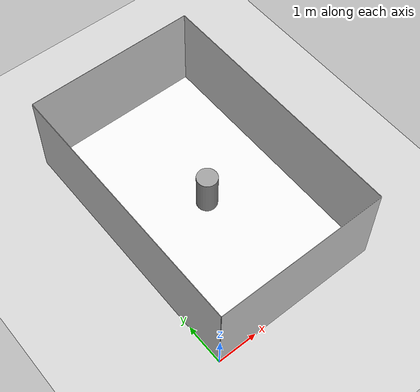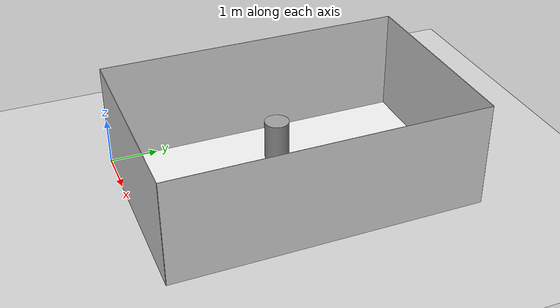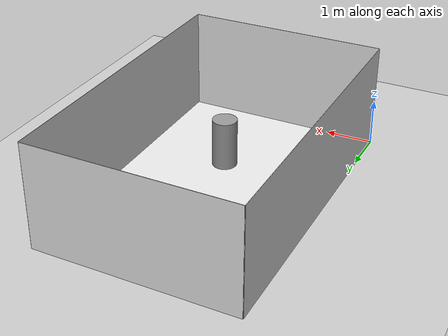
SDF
<sdf version="1.6">
 <world name="default">
  <include><uri>model://ground_plane</uri></include>
  <include><uri>model://sun</uri></include>
  <include><uri>model://basement_tank</uri><static>true</static></include>
  <include><uri>model://cylinder_target</uri><pose>2.1 3.0 1.0 0 0 0</pose><static>true</static></include>
 </world>
</sdf>

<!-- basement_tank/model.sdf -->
<sdf version='1.6'>
  <model name='basement_tank_model'>
    <link name='basement_tank'>
      <inertial>
        <mass>1</mass>
      </inertial>

      <collision name='bottom'>
        <laser_retro>50</laser_retro>
        <pose frame=''>2.135 3.27 0.005 0 -0 0</pose>
        <geometry>
          <box>
            <size>4.27 6.54 0.01</size>
          </box>
        </geometry>
      </collision>
      <visual name='visual1'>
        <pose frame=''>2.135 3.27 0.005 0 -0 0</pose>
        <geometry>
          <box>
            <size>4.27 6.54 0.01</size>
          </box>
        </geometry>
        <material>
          <script>
            <uri>file://media/materials/scripts/gazebo.material</uri>
            <name>Gazebo/White</name>
          </script>
        </material>
      </visual>

      <collision name='left_side'>
        <laser_retro>50</laser_retro>
        <pose frame=''>-0.005 3.27 1.12 0 -0 0</pose>
        <geometry>
          <box>
            <size>0.01 6.54 2.24</size>
          </box>
        </geometry>
      </collision>
      <visual name='visual2'>
        <pose frame=''>-0.005 3.27 1.12 0 -0 0</pose>
        <geometry>
          <box>
            <size>0.01 6.54 2.24</size>
          </box>
        </geometry>
        <material>
          <script>
            <uri>file://media/materials/scripts/gazebo.material</uri>
            <name>Gazebo/White</name>
          </script>
        </material>
      </visual>

      <collision name='right_side'>
        <laser_retro>50</laser_retro>
        <pose frame=''>4.275 3.27 1.12 0 -0 0</pose>
        <geometry>
          <box>
            <size>0.01 6.54 2.24</size>
          </box>
        </geometry>
      </collision>
      <visual name='visual3'>
        <pose frame=''>4.275 3.27 1.12 0 -0 0</pose>
        <geometry>
          <box>
            <size>0.01 6.54 2.24</size>
          </box>
        </geometry>
        <material>
          <script>
            <uri>file://media/materials/scripts/gazebo.material</uri>
            <name>Gazebo/White</name>
          </script>
        </material>
      </visual>

      <collision name='front_side'>
        <laser_retro>50</laser_retro>
        <pose frame=''>2.135 -0.005 1.12 0 -0 0</pose>
        <geometry>
          <box>
            <size>4.27 0.01 2.24</size>
          </box>
        </geometry>
      </collision>
      <visual name='visual4'>
        <pose frame=''>2.135 -0.005 1.12 0 -0 0</pose>
        <geometry>
          <box>
            <size>4.27 0.01 2.24</size>
          </box>
        </geometry>
        <material>
          <script>
            <uri>file://media/materials/scripts/gazebo.material</uri>
            <name>Gazebo/White</name>
          </script>
        </material>
      </visual>

      <collision name='back_side'>
        <laser_retro>50</laser_retro>
        <pose frame=''>2.135 6.545 1.12 0 -0 0</pose>
        <geometry>
          <box>
            <size>4.27 0.01 2.24</size>
          </box>
        </geometry>
      </collision>
      <visual name='visual5'>
        <pose frame=''>2.135 6.545 1.12 0 -0 0</pose>
        <geometry>
          <box>
            <size>4.27 0.01 2.24</size>
          </box>
        </geometry>
        <material>
          <script>
            <uri>file://media/materials/scripts/gazebo.material</uri>
            <name>Gazebo/White</name>
          </script>
        </material>
      </visual>

    </link>
  </model>
</sdf>

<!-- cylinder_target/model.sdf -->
<sdf version="1.6">
  <model name ='cylinder_target'>
    <link name='link'>
      <inertial>
        <mass>1</mass>
        <inertia>
          <ixx>0.145833</ixx>
          <ixy>0</ixy>
          <ixz>0</ixz>
          <iyy>0.145833</iyy>
          <iyz>0</iyz>
          <izz>0.125</izz>
        </inertia>
        <pose frame=''>0 0 0 0 -0 0</pose>
      </inertial>
      <collision name='cylinder'>
        <laser_retro>255</laser_retro>
        <geometry>
          <cylinder>
            <radius>0.25</radius>
            <length>1</length>
          </cylinder>
        </geometry>
        <max_contacts>10</max_contacts>
        <surface>
          <contact>
            <ode/>
          </contact>
          <bounce/>
          <friction>
            <torsional>
              <ode/>
            </torsional>
            <ode/>
          </friction>
        </surface>
      </collision>
      <visual name='visual'>
        <geometry>
          <cylinder>
            <radius>0.25</radius>
            <length>1</length>
          </cylinder>
        </geometry>
        <material>
          <script>
            <name>Gazebo/Grey</name>
            <uri>file://media/materials/scripts/gazebo.material</uri>
          </script>
        </material>
      </visual>
      <self_collide>0</self_collide>
      <enable_wind>0</enable_wind>
      <kinematic>0</kinematic>
    </link>
  </model>
</sdf>
